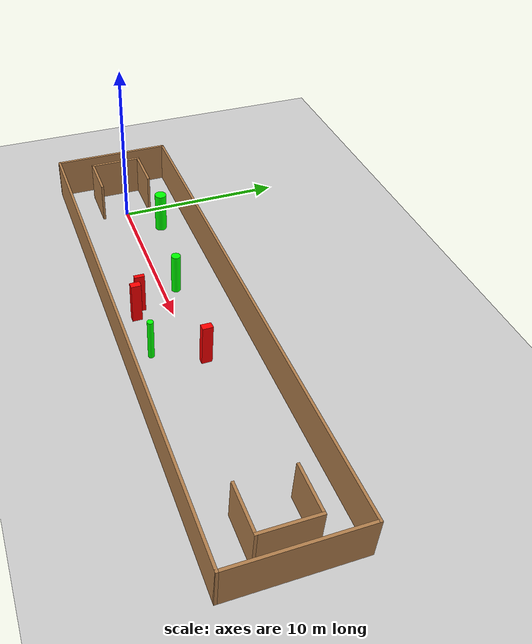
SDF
<sdf version="1.7">
 <world name="default">
  <light name="sun" type="directional">
   <pose>0 0 10 0 -0 0</pose>
   <diffuse>0.8 0.8 0.8 1</diffuse>
   <specular>0.2 0.2 0.2 1</specular>
   <attenuation>
    <range>1000</range>
    <constant>0.9</constant>
    <linear>0.01</linear>
    <quadratic>0.001</quadratic>
   </attenuation>
   <direction>-0.5 0.1 -0.9</direction>
   <spot><inner_angle>0</inner_angle><outer_angle>0</outer_angle><falloff>0</falloff></spot>
  </light>
  <model name="ground_plane">
   <static>1</static>
   <link name="link">
    <collision name="collision">
     <geometry><plane><normal>0 0 1</normal><size>100 100</size></plane></geometry>
     <surface>
      <contact><collide_bitmask>65535</collide_bitmask></contact>
      <friction><ode><mu>100</mu><mu2>50</mu2></ode></friction>
     </surface>
    </collision>
    <visual name="visual">
     <cast_shadows>0</cast_shadows>
     <geometry><plane><normal>0 0 1</normal><size>100 100</size></plane></geometry>
     <material>
      <script><uri>file://media/materials/scripts/gazebo.material</uri><name>Gazebo/Grey</name></script>
     </material>
    </visual>
   </link>
  </model>
  <gravity>0 0 -9.8</gravity>
  <magnetic_field>6e-06 2.3e-05 -4.2e-05</magnetic_field>
  <atmosphere type="adiabatic"/>
  <physics type="ode">
   <max_step_size>0.001</max_step_size>
   <real_time_factor>1</real_time_factor>
   <real_time_update_rate>1000</real_time_update_rate>
  </physics>
  <scene><ambient>0.4 0.4 0.4 1</ambient><background>0.7 0.7 0.7 1</background><shadows>1</shadows></scene>
  <spherical_coordinates>
   <surface_model>EARTH_WGS84</surface_model>
   <latitude_deg>0</latitude_deg>
   <longitude_deg>0</longitude_deg>
   <elevation>0</elevation>
   <heading_deg>0</heading_deg>
  </spherical_coordinates>
  <model name="my_base_walls">
   <link name="Wall_0">
    <collision name="Wall_0_Collision">
     <geometry><box><size>7.15 0.15 2.5</size></box></geometry>
     <pose>0 0 1.25 0 -0 0</pose>
    </collision>
    <visual name="Wall_0_Visual">
     <pose>0 0 1.25 0 -0 0</pose>
     <geometry><box><size>7.15 0.15 2.5</size></box></geometry>
     <material>
      <script><uri>file://media/materials/scripts/gazebo.material</uri><name>Gazebo/Wood</name></script>
      <ambient>1 1 1 1</ambient>
     </material>
     <meta><layer>0</layer></meta>
    </visual>
    <pose>-15 0 0 0 -0 1.5708</pose>
   </link>
   <link name="Wall_10">
    <collision name="Wall_10_Collision">
     <geometry><box><size>2.65 0.15 2.5</size></box></geometry>
     <pose>0 0 1.25 0 -0 0</pose>
    </collision>
    <visual name="Wall_10_Visual">
     <pose>0 0 1.25 0 -0 0</pose>
     <geometry><box><size>2.65 0.15 2.5</size></box></geometry>
     <material>
      <script><uri>file://media/materials/scripts/gazebo.material</uri><name>Gazebo/Wood</name></script>
      <ambient>1 1 1 1</ambient>
     </material>
     <meta><layer>0</layer></meta>
    </visual>
    <pose>-12.75 -1.5 0 0 -0 0</pose>
   </link>
   <link name="Wall_12">
    <collision name="Wall_12_Collision">
     <geometry><box><size>2.65 0.15 2.5</size></box></geometry>
     <pose>0 0 1.25 0 -0 0</pose>
    </collision>
    <visual name="Wall_12_Visual">
     <pose>0 0 1.25 0 -0 0</pose>
     <geometry><box><size>2.65 0.15 2.5</size></box></geometry>
     <material>
      <script><uri>file://media/materials/scripts/gazebo.material</uri><name>Gazebo/Wood</name></script>
      <ambient>1 1 1 1</ambient>
     </material>
     <meta><layer>0</layer></meta>
    </visual>
    <pose>-12.75 1.5 0 0 -0 0</pose>
   </link>
   <link name="Wall_14">
    <collision name="Wall_14_Collision">
     <geometry><box><size>3.15 0.15 2.5</size></box></geometry>
     <pose>0 0 1.25 0 -0 0</pose>
    </collision>
    <visual name="Wall_14_Visual">
     <pose>0 0 1.25 0 -0 0</pose>
     <geometry><box><size>3.15 0.15 2.5</size></box></geometry>
     <material>
      <script><uri>file://media/materials/scripts/gazebo.material</uri><name>Gazebo/Wood</name></script>
      <ambient>1 1 1 1</ambient>
     </material>
     <meta><layer>0</layer></meta>
    </visual>
    <pose>14 0 0 0 -0 -1.5708</pose>
   </link>
   <link name="Wall_15">
    <collision name="Wall_15_Collision">
     <geometry><box><size>2.65 0.15 2.5</size></box></geometry>
     <pose>0 0 1.25 0 -0 0</pose>
    </collision>
    <visual name="Wall_15_Visual">
     <pose>0 0 1.25 0 -0 0</pose>
     <geometry><box><size>2.65 0.15 2.5</size></box></geometry>
     <material>
      <script><uri>file://media/materials/scripts/gazebo.material</uri><name>Gazebo/Wood</name></script>
      <ambient>1 1 1 1</ambient>
     </material>
     <meta><layer>0</layer></meta>
    </visual>
    <pose>12.75 -1.5 0 0 -0 3.14159</pose>
   </link>
   <link name="Wall_17">
    <collision name="Wall_17_Collision">
     <geometry><box><size>2.65 0.15 2.5</size></box></geometry>
     <pose>0 0 1.25 0 -0 0</pose>
    </collision>
    <visual name="Wall_17_Visual">
     <pose>0 0 1.25 0 -0 0</pose>
     <geometry><box><size>2.65 0.15 2.5</size></box></geometry>
     <material>
      <script><uri>file://media/materials/scripts/gazebo.material</uri><name>Gazebo/Wood</name></script>
      <ambient>1 1 1 1</ambient>
     </material>
     <meta><layer>0</layer></meta>
    </visual>
    <pose>12.75 1.5 0 0 -0 3.14159</pose>
   </link>
   <link name="Wall_2">
    <collision name="Wall_2_Collision">
     <geometry><box><size>30.15 0.15 2.5</size></box></geometry>
     <pose>0 0 1.25 0 -0 0</pose>
    </collision>
    <visual name="Wall_2_Visual">
     <pose>0 0 1.25 0 -0 0</pose>
     <geometry><box><size>30.15 0.15 2.5</size></box></geometry>
     <material>
      <script><uri>file://media/materials/scripts/gazebo.material</uri><name>Gazebo/Wood</name></script>
      <ambient>1 1 1 1</ambient>
     </material>
     <meta><layer>0</layer></meta>
    </visual>
    <pose>-0 -3.5 0 0 -0 0</pose>
   </link>
   <link name="Wall_4">
    <collision name="Wall_4_Collision">
     <geometry><box><size>30.15 0.15 2.5</size></box></geometry>
     <pose>0 0 1.25 0 -0 0</pose>
    </collision>
    <visual name="Wall_4_Visual">
     <pose>0 0 1.25 0 -0 0</pose>
     <geometry><box><size>30.15 0.15 2.5</size></box></geometry>
     <material>
      <script><uri>file://media/materials/scripts/gazebo.material</uri><name>Gazebo/Wood</name></script>
      <ambient>1 1 1 1</ambient>
     </material>
     <meta><layer>0</layer></meta>
    </visual>
    <pose>-0 3.5 0 0 -0 0</pose>
   </link>
   <link name="Wall_6">
    <collision name="Wall_6_Collision">
     <geometry><box><size>7.15 0.15 2.5</size></box></geometry>
     <pose>0 0 1.25 0 -0 0</pose>
    </collision>
    <visual name="Wall_6_Visual">
     <pose>0 0 1.25 0 -0 0</pose>
     <geometry><box><size>7.15 0.15 2.5</size></box></geometry>
     <material>
      <script><uri>file://media/materials/scripts/gazebo.material</uri><name>Gazebo/Wood</name></script>
      <ambient>1 1 1 1</ambient>
     </material>
     <meta><layer>0</layer></meta>
    </visual>
    <pose>15 0 0 0 -0 -1.5708</pose>
   </link>
   <link name="Wall_9">
    <collision name="Wall_9_Collision">
     <geometry><box><size>3.15 0.15 2.5</size></box></geometry>
     <pose>0 0 1.25 0 -0 0</pose>
    </collision>
    <visual name="Wall_9_Visual">
     <pose>0 0 1.25 0 -0 0</pose>
     <geometry><box><size>3.15 0.15 2.5</size></box></geometry>
     <material>
      <script><uri>file://media/materials/scripts/gazebo.material</uri><name>Gazebo/Wood</name></script>
      <ambient>1 1 1 1</ambient>
     </material>
     <meta><layer>0</layer></meta>
    </visual>
    <pose>-14 0 0 0 -0 -1.5708</pose>
   </link>
   <static>1</static>
   <pose>11.5 0 0 0 -0 0</pose>
  </model>
  <model name="cylinder1">
   <static>1</static>
   <link name="link">
    <inertial>
     <mass>1</mass>
     <inertia><ixx>0.5</ixx><ixy>0</ixy><ixz>0</ixz><iyy>0.5</iyy><iyz>0</iyz><izz>1</izz></inertia>
    </inertial>
    <collision name="collision">
     <geometry><cylinder><radius>0.2640769069356985</radius><length>2.5</length></cylinder></geometry>
    </collision>
    <visual name="visual">
     <geometry><cylinder><radius>0.2640769069356985</radius><length>2.5</length></cylinder></geometry>
     <material>
      <ambient>0 1 0 1</ambient>
      <diffuse>0 1 0 1</diffuse>
      <specular>0.1 0.1 0.1 1</specular>
      <emissive>0 0 0 0</emissive>
     </material>
    </visual>
   </link>
   <pose>8.006564558791545 0.7918150250132783 1.25 0 0 0</pose>
  </model>
  <model name="cylinder2">
   <static>1</static>
   <link name="link">
    <inertial>
     <mass>1</mass>
     <inertia><ixx>0.5</ixx><ixy>0</ixy><ixz>0</ixz><iyy>0.5</iyy><iyz>0</iyz><izz>1</izz></inertia>
    </inertial>
    <collision name="collision">
     <geometry><cylinder><radius>0.17215125877141443</radius><length>2.5</length></cylinder></geometry>
    </collision>
    <visual name="visual">
     <geometry><cylinder><radius>0.17215125877141443</radius><length>2.5</length></cylinder></geometry>
     <material>
      <ambient>0 1 0 1</ambient>
      <diffuse>0 1 0 1</diffuse>
      <specular>0.1 0.1 0.1 1</specular>
      <emissive>0 0 0 0</emissive>
     </material>
    </visual>
   </link>
   <pose>12.676309344458241 -2.0713776023335977 1.25 0 0 0</pose>
  </model>
  <model name="cylinder3">
   <static>1</static>
   <link name="link">
    <inertial>
     <mass>1</mass>
     <inertia><ixx>0.5</ixx><ixy>0</ixy><ixz>0</ixz><iyy>0.5</iyy><iyz>0</iyz><izz>1</izz></inertia>
    </inertial>
    <collision name="collision">
     <geometry><cylinder><radius>0.3495677583517776</radius><length>2.5</length></cylinder></geometry>
    </collision>
    <visual name="visual">
     <geometry><cylinder><radius>0.3495677583517776</radius><length>2.5</length></cylinder></geometry>
     <material>
      <ambient>0 1 0 1</ambient>
      <diffuse>0 1 0 1</diffuse>
      <specular>0.1 0.1 0.1 1</specular>
      <emissive>0 0 0 0</emissive>
     </material>
    </visual>
   </link>
   <pose>2.007868282500011 1.705443822853014 1.25 0 0 0</pose>
  </model>
  <model name="box1">
   <static>1</static>
   <link name="link">
    <inertial>
     <mass>1</mass>
     <inertia><ixx>0.083</ixx><ixy>0</ixy><ixz>0</ixz><iyy>0.083</iyy><iyz>0</iyz><izz>0.083</izz></inertia>
    </inertial>
    <collision name="collision">
     <geometry><box><size>0.36160048926553023 0.5634055364710541 2.5</size></box></geometry>
    </collision>
    <visual name="visual">
     <geometry><box><size>0.36160048926553023 0.5634055364710541 2.5</size></box></geometry>
     <material>
      <ambient>1 0 0 1</ambient>
      <diffuse>1 0 0 1</diffuse>
      <specular>0.1 0.1 0.1 1</specular>
      <emissive>0 0 0 0</emissive>
     </material>
    </visual>
    <sensor name="my_contact" type="contact">
     <contact><collision>box_collision</collision><topic>__default_topic__</topic></contact>
    </sensor>
   </link>
   <pose>9.664118733837109 -2.026758699371104 1.25 0 0 0</pose>
  </model>
  <model name="box2">
   <static>1</static>
   <link name="link">
    <inertial>
     <mass>1</mass>
     <inertia><ixx>0.083</ixx><ixy>0</ixy><ixz>0</ixz><iyy>0.083</iyy><iyz>0</iyz><izz>0.083</izz></inertia>
    </inertial>
    <collision name="collision">
     <geometry><box><size>0.3682871817018171 0.5890802451492239 2.5</size></box></geometry>
    </collision>
    <visual name="visual">
     <geometry><box><size>0.3682871817018171 0.5890802451492239 2.5</size></box></geometry>
     <material>
      <ambient>1 0 0 1</ambient>
      <diffuse>1 0 0 1</diffuse>
      <specular>0.1 0.1 0.1 1</specular>
      <emissive>0 0 0 0</emissive>
     </material>
    </visual>
    <sensor name="my_contact" type="contact">
     <contact><collision>box_collision</collision><topic>__default_topic__</topic></contact>
    </sensor>
   </link>
   <pose>13.86274967598161 0.5736924121699776 1.25 0 0 0</pose>
  </model>
  <model name="box3">
   <static>1</static>
   <link name="link">
    <inertial>
     <mass>1</mass>
     <inertia><ixx>0.083</ixx><ixy>0</ixy><ixz>0</ixz><iyy>0.083</iyy><iyz>0</iyz><izz>0.083</izz></inertia>
    </inertial>
    <collision name="collision">
     <geometry><box><size>0.22692170992182034 0.57744233762471 2.5</size></box></geometry>
    </collision>
    <visual name="visual">
     <geometry><box><size>0.22692170992182034 0.57744233762471 2.5</size></box></geometry>
     <material>
      <ambient>1 0 0 1</ambient>
      <diffuse>1 0 0 1</diffuse>
      <specular>0.1 0.1 0.1 1</specular>
      <emissive>0 0 0 0</emissive>
     </material>
    </visual>
    <sensor name="my_contact" type="contact">
     <contact><collision>box_collision</collision><topic>__default_topic__</topic></contact>
    </sensor>
   </link>
   <pose>9.046718794566928 -1.6408893731677268 1.25 0 0 0</pose>
  </model>
 </world>
</sdf>
